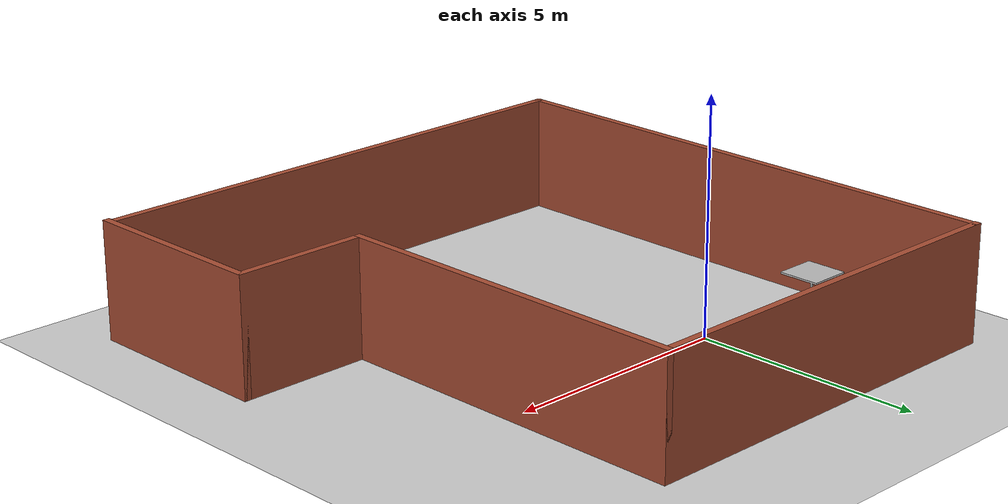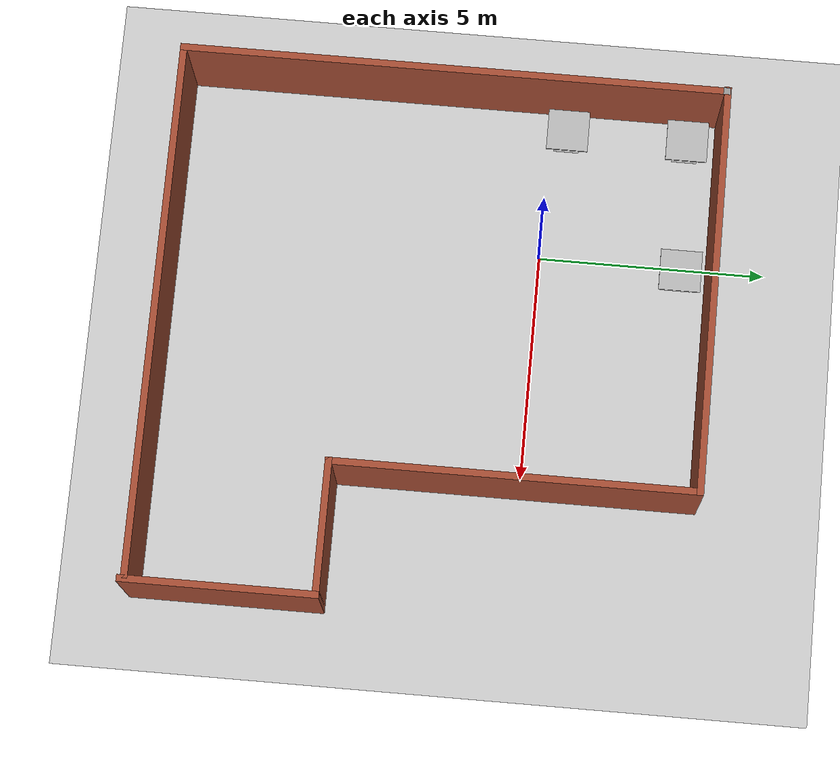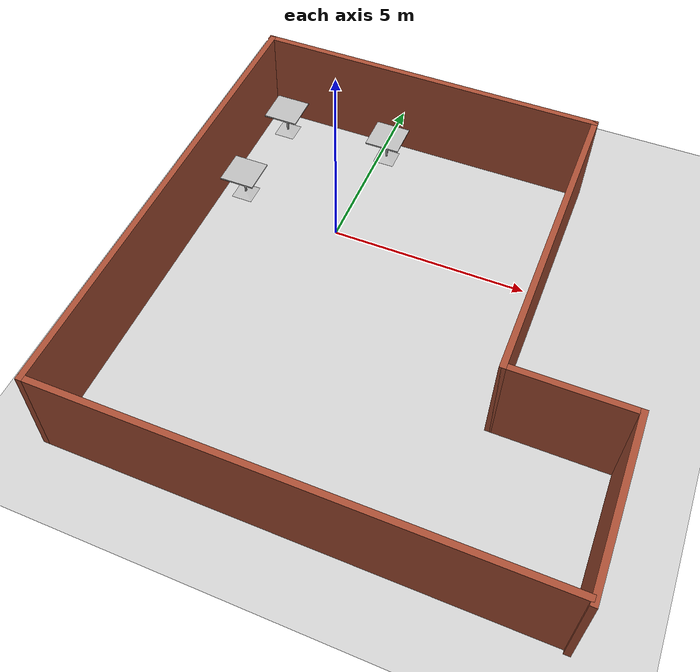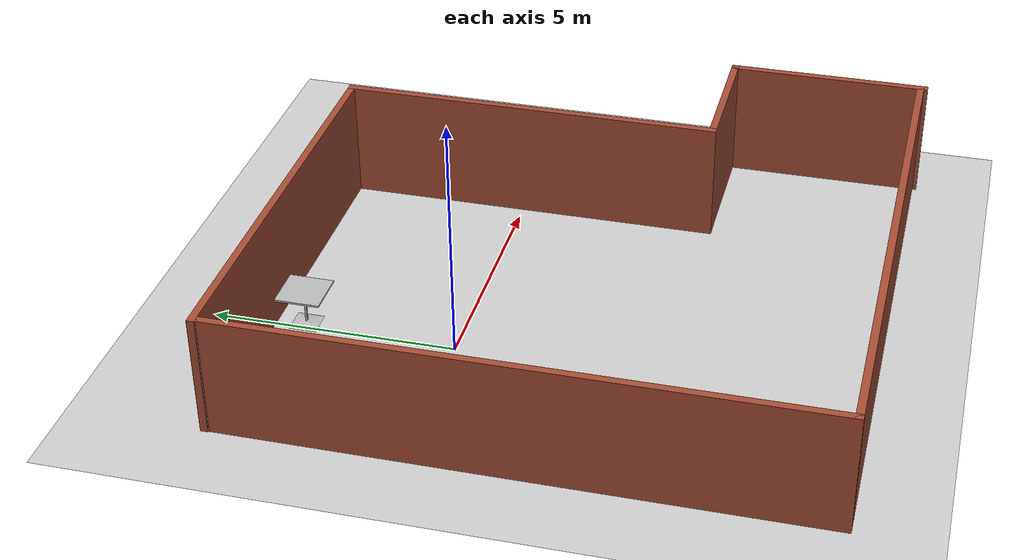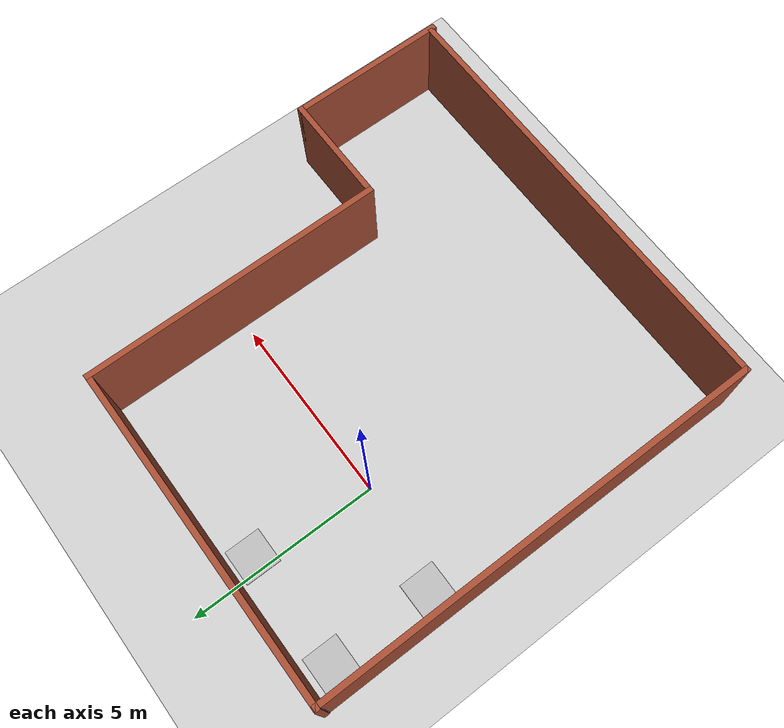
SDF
<sdf version="1.6">
 <world name="default">
  <light name="sun" type="directional">
   <pose>0 0 10 0 -0 0</pose>
   <diffuse>0.8 0.8 0.8 1</diffuse>
   <specular>0.2 0.2 0.2 1</specular>
   <attenuation>
    <range>1000</range>
    <constant>0.9</constant>
    <linear>0.01</linear>
    <quadratic>0.001</quadratic>
   </attenuation>
   <direction>-0.5 0.1 -0.9</direction>
  </light>
  <model name="ground_plane">
   <static>1</static>
   <link name="link">
    <collision name="collision">
     <geometry><plane><normal>0 0 1</normal><size>100 100</size></plane></geometry>
     <surface>
      <contact><collide_bitmask>65535</collide_bitmask></contact>
      <friction><ode><mu>100</mu><mu2>50</mu2></ode></friction>
     </surface>
    </collision>
    <visual name="visual">
     <cast_shadows>0</cast_shadows>
     <geometry><plane><normal>0 0 1</normal><size>100 100</size></plane></geometry>
     <material>
      <script><uri>file://media/materials/scripts/gazebo.material</uri><name>Gazebo/Grey</name></script>
     </material>
    </visual>
   </link>
  </model>
  <gravity>0 0 -9.8</gravity>
  <magnetic_field>6e-06 2.3e-05 -4.2e-05</magnetic_field>
  <atmosphere type="adiabatic"/>
  <physics name="default_physics" default="0" type="ode">
   <max_step_size>0.001</max_step_size>
   <real_time_factor>1</real_time_factor>
   <real_time_update_rate>1000</real_time_update_rate>
  </physics>
  <scene><ambient>0.4 0.4 0.4 1</ambient><background>0.7 0.7 0.7 1</background><shadows>0</shadows></scene>
  <audio><device>default</device></audio>
  <spherical_coordinates>
   <surface_model>EARTH_WGS84</surface_model>
   <latitude_deg>0</latitude_deg>
   <longitude_deg>0</longitude_deg>
   <elevation>0</elevation>
   <heading_deg>0</heading_deg>
  </spherical_coordinates>
  <model name="Untitled5">
   <pose>2.38136 -2.18728 0 0 -0 0</pose>
   <link name="Wall_10">
    <collision name="Wall_10_Collision">
     <geometry><box><size>8 0.15 2.5</size></box></geometry>
     <pose>0 0 1.25 0 -0 0</pose>
    </collision>
    <visual name="Wall_10_Visual">
     <pose>0 0 1.25 0 -0 0</pose>
     <geometry><box><size>8 0.15 2.5</size></box></geometry>
     <material>
      <script><uri>file://media/materials/scripts/gazebo.material</uri><name>Gazebo/Bricks</name></script>
      <ambient>1 1 1 1</ambient>
     </material>
     <meta><layer>0</layer></meta>
    </visual>
    <pose>3 2.05 0 0 -0 -1.5708</pose>
   </link>
   <link name="Wall_14">
    <collision name="Wall_14_Collision">
     <geometry><box><size>12 0.15 2.5</size></box></geometry>
     <pose>0 0 1.25 0 -0 0</pose>
    </collision>
    <visual name="Wall_14_Visual">
     <pose>0 0 1.25 0 -0 0</pose>
     <geometry><box><size>12 0.15 2.5</size></box></geometry>
     <material>
      <script><uri>file://media/materials/scripts/gazebo.material</uri><name>Gazebo/Bricks</name></script>
      <ambient>1 1 1 1</ambient>
     </material>
     <meta><layer>0</layer></meta>
    </visual>
    <pose>-5.82989 0.029886 0 0 -0 -1.5708</pose>
   </link>
   <link name="Wall_16">
    <collision name="Wall_16_Collision">
     <geometry><box><size>11.75 0.15 2.5</size></box></geometry>
     <pose>0 0 1.25 0 -0 0</pose>
    </collision>
    <visual name="Wall_16_Visual">
     <pose>0 0 1.25 0 -0 0</pose>
     <geometry><box><size>11.75 0.15 2.5</size></box></geometry>
     <material>
      <script><uri>file://media/materials/scripts/gazebo.material</uri><name>Gazebo/Bricks</name></script>
      <ambient>1 1 1 1</ambient>
     </material>
     <meta><layer>0</layer></meta>
    </visual>
    <pose>-0.029887 -5.89511 0 0 -0 0</pose>
   </link>
   <link name="Wall_18">
    <collision name="Wall_18_Collision">
     <geometry><box><size>3 0.15 2.5</size></box></geometry>
     <pose>0 0 1.25 0 -0 0</pose>
    </collision>
    <visual name="Wall_18_Visual">
     <pose>0 0 1.25 0 -0 0</pose>
     <geometry><box><size>3 0.15 2.5</size></box></geometry>
     <material>
      <script><uri>file://media/materials/scripts/gazebo.material</uri><name>Gazebo/Bricks</name></script>
      <ambient>1 1 1 1</ambient>
     </material>
     <meta><layer>0</layer></meta>
    </visual>
    <pose>4.425 -1.875 0 0 -0 0</pose>
   </link>
   <link name="Wall_19">
    <collision name="Wall_19_Collision">
     <geometry><box><size>4.25 0.15 2.5</size></box></geometry>
     <pose>0 0 1.25 0 -0 0</pose>
    </collision>
    <visual name="Wall_19_Visual">
     <pose>0 0 1.25 0 -0 0</pose>
     <geometry><box><size>4.25 0.15 2.5</size></box></geometry>
     <material>
      <script><uri>file://media/materials/scripts/gazebo.material</uri><name>Gazebo/Bricks</name></script>
      <ambient>1 1 1 1</ambient>
     </material>
     <meta><layer>0</layer></meta>
    </visual>
    <pose>5.85 -3.925 0 0 -0 -1.5708</pose>
   </link>
   <link name="Wall_3">
    <collision name="Wall_3_Collision">
     <geometry><box><size>9 0.15 2.5</size></box></geometry>
     <pose>0 0 1.25 0 -0 0</pose>
    </collision>
    <visual name="Wall_3_Visual">
     <pose>0 0 1.25 0 -0 0</pose>
     <geometry><box><size>9 0.15 2.5</size></box></geometry>
     <material>
      <script><uri>file://media/materials/scripts/gazebo.material</uri><name>Gazebo/Bricks</name></script>
      <ambient>1 1 1 1</ambient>
     </material>
     <meta><layer>0</layer></meta>
    </visual>
    <pose>-1.425 5.975 0 0 -0 0</pose>
   </link>
   <link name="Wall_5">
    <collision name="Wall_5_Collision">
     <geometry><box><size>0.15 0.15 2.5</size></box></geometry>
     <pose>0 0 1.25 0 -0 0</pose>
    </collision>
    <visual name="Wall_5_Visual">
     <pose>0 0 1.25 0 -0 0</pose>
     <geometry><box><size>0.15 0.15 2.5</size></box></geometry>
     <material>
      <script><uri>file://media/materials/scripts/gazebo.material</uri><name>Gazebo/Grey</name></script>
      <ambient>1 1 1 1</ambient>
     </material>
     <meta><layer>0</layer></meta>
    </visual>
    <pose>-5.82989 5.95489 0 0 -0 0</pose>
   </link>
   <static>1</static>
  </model>
  <model name="cafe_table">
   <static>1</static>
   <link name="link">
    <collision name="surface">
     <pose>0 0 0.755 0 -0 0</pose>
     <geometry><box><size>0.913 0.913 0.04</size></box></geometry>
    </collision>
    <collision name="column">
     <pose>0 0 0.37 0 -0 0</pose>
     <geometry><box><size>0.042 0.042 0.74</size></box></geometry>
    </collision>
    <collision name="base">
     <pose>0 0 0.02 0 -0 0</pose>
     <geometry><box><size>0.56 0.56 0.04</size></box></geometry>
    </collision>
    <visual name="visual">
     <geometry><mesh><uri>model://cafe_table/meshes/cafe_table.dae</uri></mesh></geometry>
    </visual>
   </link>
   <pose>-2.77851 3.07204 0 0 -0 0</pose>
  </model>
  <model name="cafe_table_clone">
   <static>1</static>
   <link name="link">
    <collision name="surface">
     <pose>0 0 0.755 0 -0 0</pose>
     <geometry><box><size>0.913 0.913 0.04</size></box></geometry>
    </collision>
    <collision name="column">
     <pose>0 0 0.37 0 -0 0</pose>
     <geometry><box><size>0.042 0.042 0.74</size></box></geometry>
    </collision>
    <collision name="base">
     <pose>0 0 0.02 0 -0 0</pose>
     <geometry><box><size>0.56 0.56 0.04</size></box></geometry>
    </collision>
    <visual name="visual">
     <geometry><mesh><uri>model://cafe_table/meshes/cafe_table.dae</uri></mesh></geometry>
    </visual>
   </link>
   <pose>-2.79982 0.417052 0 0 -0 0</pose>
  </model>
  <model name="cafe_table_clone_0">
   <static>1</static>
   <link name="link">
    <collision name="surface">
     <pose>0 0 0.755 0 -0 0</pose>
     <geometry><box><size>0.913 0.913 0.04</size></box></geometry>
    </collision>
    <collision name="column">
     <pose>0 0 0.37 0 -0 0</pose>
     <geometry><box><size>0.042 0.042 0.74</size></box></geometry>
    </collision>
    <collision name="base">
     <pose>0 0 0.02 0 -0 0</pose>
     <geometry><box><size>0.56 0.56 0.04</size></box></geometry>
    </collision>
    <visual name="visual">
     <geometry><mesh><uri>model://cafe_table/meshes/cafe_table.dae</uri></mesh></geometry>
    </visual>
   </link>
   <pose>0.194287 3.12971 0 0 -0 0</pose>
  </model>
 </world>
</sdf>
